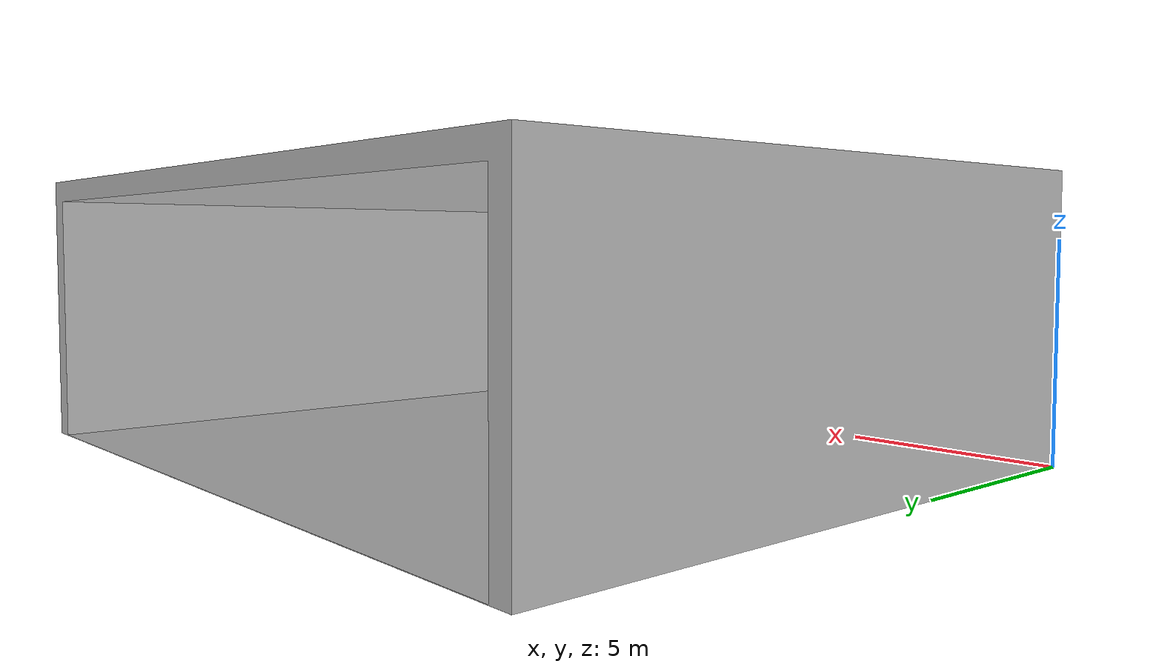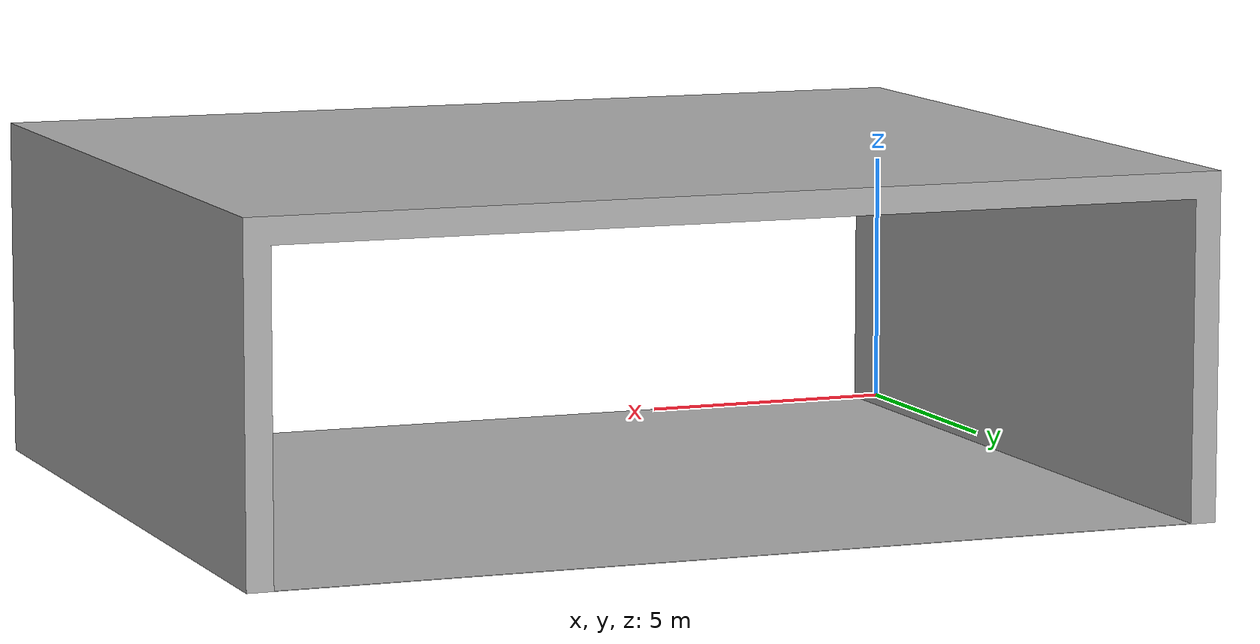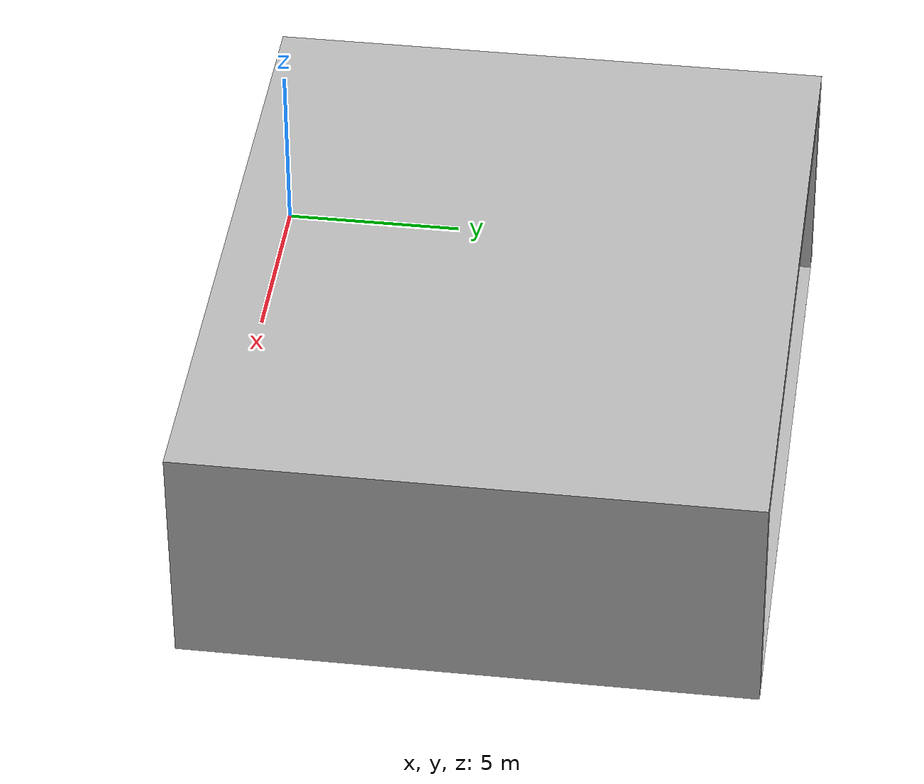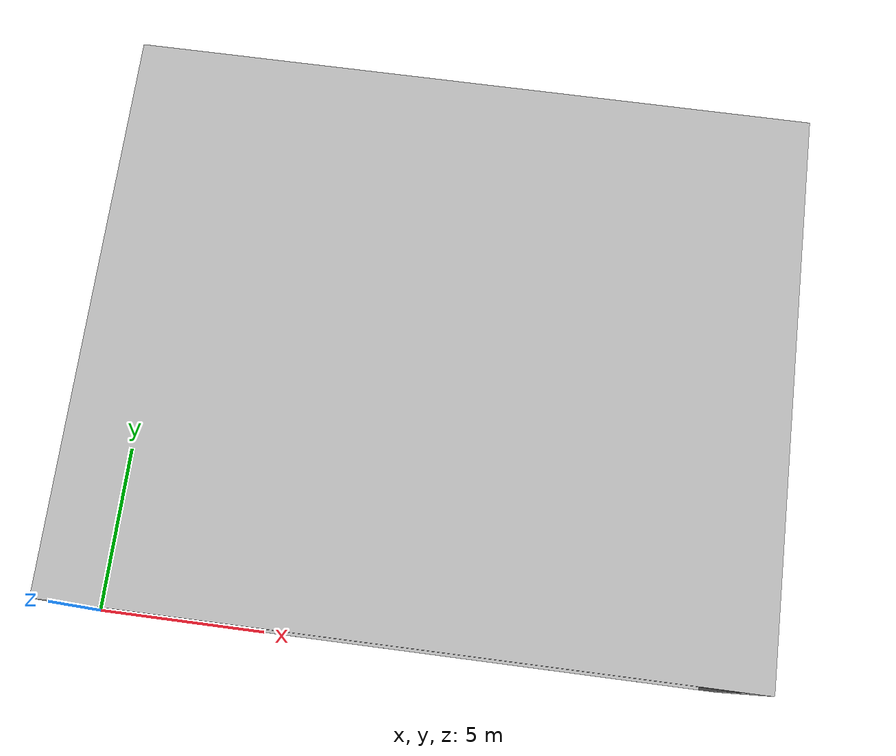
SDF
<?xml version='1.0'?>
<sdf version="1.9">
  <model name="factory">
    <static>true</static>
    <link name="link">
      <!-- 碰撞元素 -->
      <collision name="collision">
        <geometry>
          <mesh>
            <uri>factory_meter.stl</uri>
          </mesh>
        </geometry>
      </collision>
      <!-- 視覺元素 -->
      <visual name="visual">
        <geometry>
          <mesh>
            <uri>6m_hight.stl</uri>
          </mesh>
        </geometry>
        <material>
          <ambient>0.7 0.7 0.7 1</ambient>
          <diffuse>0.7 0.7 0.7 1</diffuse>
          <specular>0.1 0.1 0.1 1</specular>
        </material>
      </visual>
    </link>
  </model>
</sdf>
